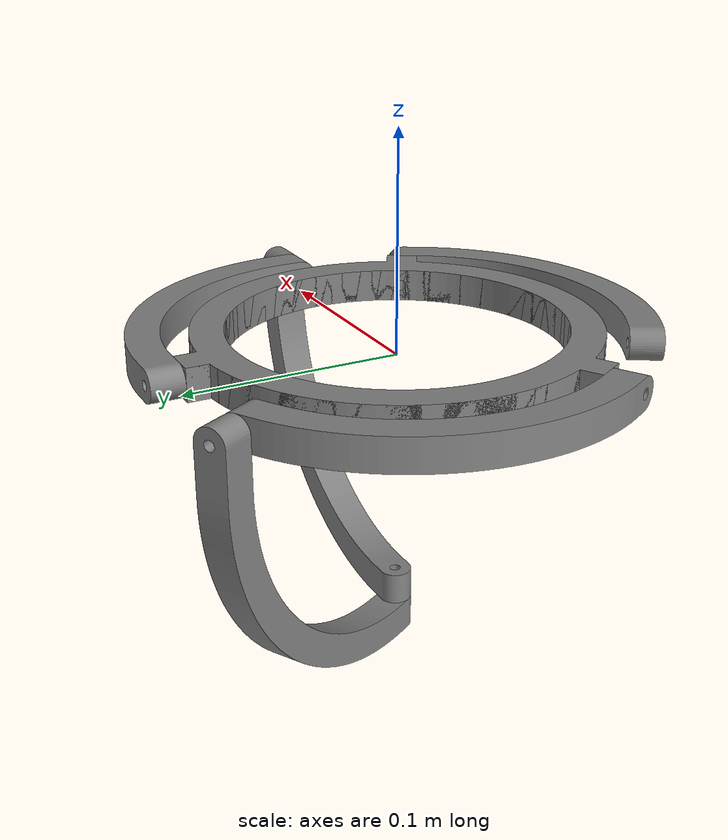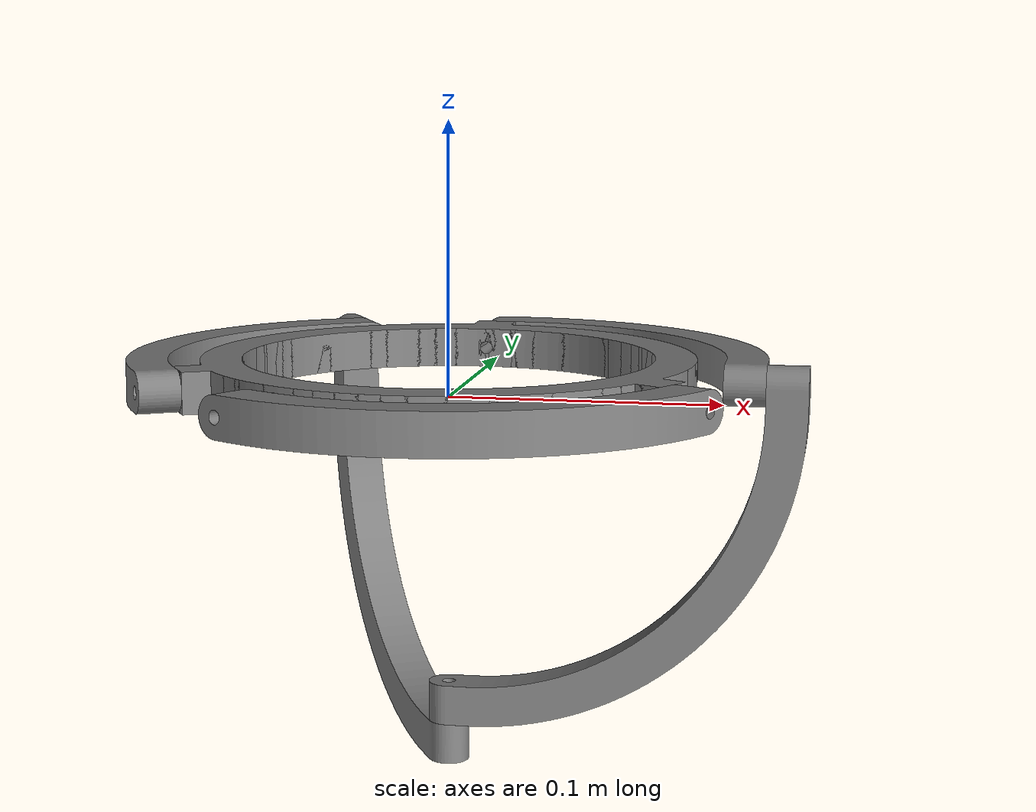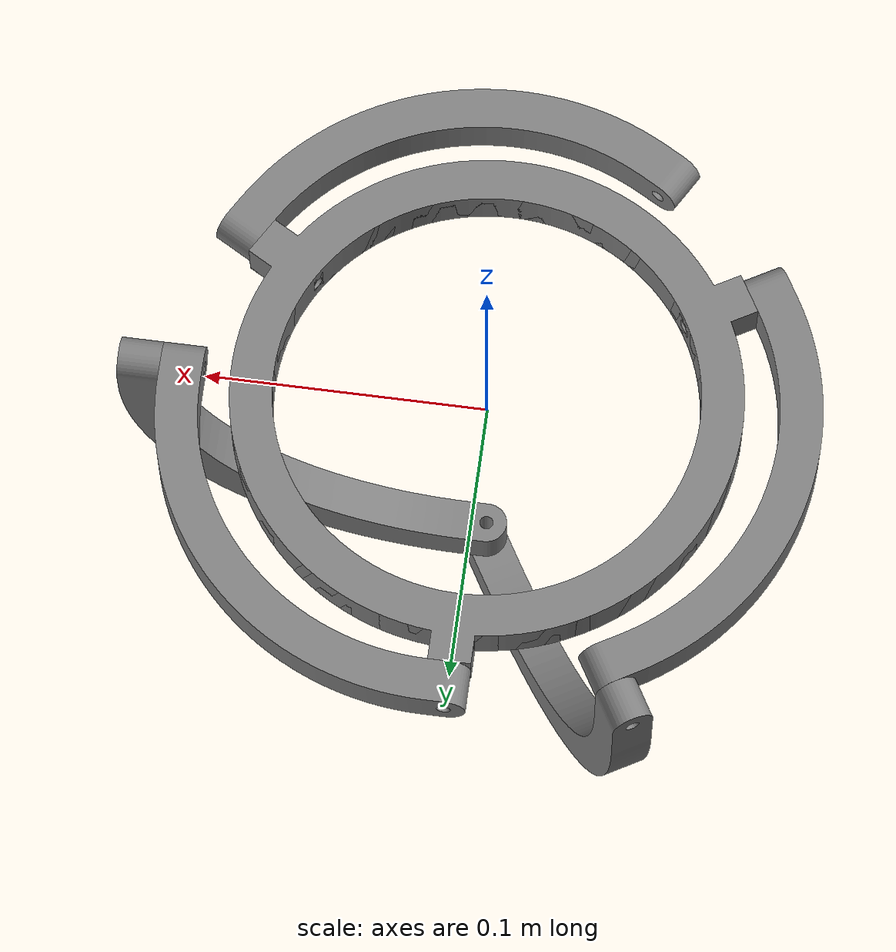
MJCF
<mujoco model="parallel_spherical">
  <compiler angle="radian" meshdir="meshes/"/>
  <asset>
    <mesh name="base_link" file="base_link.stl" scale="0.001 0.001 0.001"/>
    <mesh name="lower_link21" file="lower_link21.stl" scale="0.001 0.001 0.001"/>
    <mesh name="lower_link11" file="lower_link11.stl" scale="0.001 0.001 0.001"/>
    <mesh name="upper_link11" file="upper_link11.stl" scale="0.001 0.001 0.001"/>
    <mesh name="upper_link21" file="upper_link21.stl" scale="0.001 0.001 0.001"/>
    <mesh name="upper_link31" file="upper_link31.stl" scale="0.001 0.001 0.001"/>
    <mesh name="ring1" file="ring1.stl" scale="0.001 0.001 0.001"/>
  </asset>
  <worldbody>
    <body name="base_link">
      <inertial pos="-0.0420837 -0.0728912 -0.0885143" quat="0.913602 0.313599 -0.0840287 -0.244799" mass="0.414723" diaginertia="0.00169316 0.00158647 0.000122206"/>
      <geom type="mesh" contype="0" conaffinity="0" group="1" density="0" mesh="base_link"/>
      <geom type="mesh" mesh="base_link"/>
      <body name="lower_link21" pos="0 0 -0.1375">
        <inertial pos="-0.0407758 0.0706257 0.0576326" quat="0.90369 -0.341111 -0.0914004 0.242143" mass="0.38823" diaginertia="0.00140486 0.00132334 9.60388e-05"/>
        <joint name="Revolute_60" pos="0 0 0" axis="0 0 -1"/>
        <geom pos="0 0 0.1375" type="mesh" contype="0" conaffinity="0" group="1" density="0" mesh="lower_link21"/>
        <geom pos="0 0 0.1375" type="mesh" mesh="lower_link21"/>
        <body name="lower_link11" pos="0 0 0.015">
          <inertial pos="0.0785525 0 0.0514474" quat="0.653281 0.270598 0.270598 0.653281" mass="0.361736" diaginertia="0.00115297 0.00109362 7.28718e-05"/>
          <joint name="Revolute_61" pos="0 0 0" axis="0 0 -1"/>
          <geom pos="0 0 0.1225" type="mesh" contype="0" conaffinity="0" group="1" density="0" mesh="lower_link11"/>
          <geom pos="0 0 0.1225" type="mesh" mesh="lower_link11"/>
          <body name="upper_link11" pos="0.115 0 0.13">
            <inertial pos="-0.0460042 0.0689958 -1.21572e-07" quat="0.270598 0.653281 -0.270598 0.653281" mass="0.320119" diaginertia="0.00079907 0.00075673 5.4308e-05"/>
            <joint name="Revolute_62" pos="0 0 0" axis="1 0 0"/>
            <geom pos="-0.115 0 -0.0075" type="mesh" contype="0" conaffinity="0" group="1" density="0" mesh="upper_link11"/>
            <geom pos="-0.115 0 -0.0075" type="mesh" mesh="upper_link11"/>
            <body name="ring1" pos="-0.115 0.1 0">
              <inertial pos="0 -0.1 -1.21572e-07" quat="0.5 0.5 -0.5 0.5" mass="0.957533" diaginertia="0.006678 0.00335715 0.00335715"/>
              <joint name="Revolute_68" pos="0 0 0" axis="0 1 0"/>
              <geom pos="0 -0.1 -0.0075" type="mesh" contype="0" conaffinity="0" group="1" density="0" mesh="ring1"/>
              <geom pos="0 -0.1 -0.0075" type="mesh" mesh="ring1"/>
            </body>
          </body>
        </body>
        <body name="upper_link21" pos="-0.0575 0.099593 0.145">
          <inertial pos="-0.03675 -0.0743388 0" quat="0.560986 0.430459 -0.560986 0.430459" mass="0.320119" diaginertia="0.00079907 0.00075673 5.4308e-05"/>
          <joint name="Revolute_63" pos="0 0 0" axis="-0.5 0.866025 0"/>
          <geom pos="0.0575 -0.099593 -0.0075" type="mesh" contype="0" conaffinity="0" group="1" density="0" mesh="upper_link21"/>
          <geom pos="0.0575 -0.099593 -0.0075" type="mesh" mesh="upper_link21"/>
        </body>
      </body>
      <body name="upper_link31" pos="-0.0575 -0.099593 0.0075">
        <inertial pos="0.0827542 0.00534305 0" quat="-0.0922958 0.701057 0.0922958 0.701057" mass="0.320119" diaginertia="0.00079907 0.00075673 5.4308e-05"/>
        <joint name="Revolute_64" pos="0 0 0" axis="-0.5 -0.866025 0"/>
        <geom pos="0.0575 0.099593 -0.0075" type="mesh" contype="0" conaffinity="0" group="1" density="0" mesh="upper_link31"/>
        <geom pos="0.0575 0.099593 -0.0075" type="mesh" mesh="upper_link31"/>
      </body>
    </body>
  </worldbody>
  <equality>
    <connect name="kinematic_link2" active="true" body1="upper_link21" body2="ring1" anchor="0 0 0" />
    <connect name="kinematic_link3" active="true" body1="upper_link31" body2="ring1" anchor="0 0 0" />
  </equality>
</mujoco>
